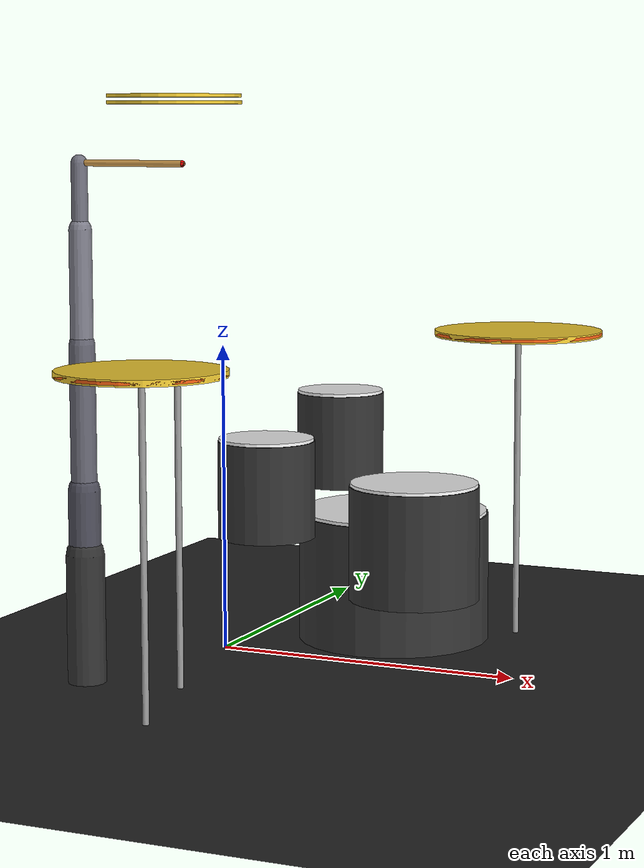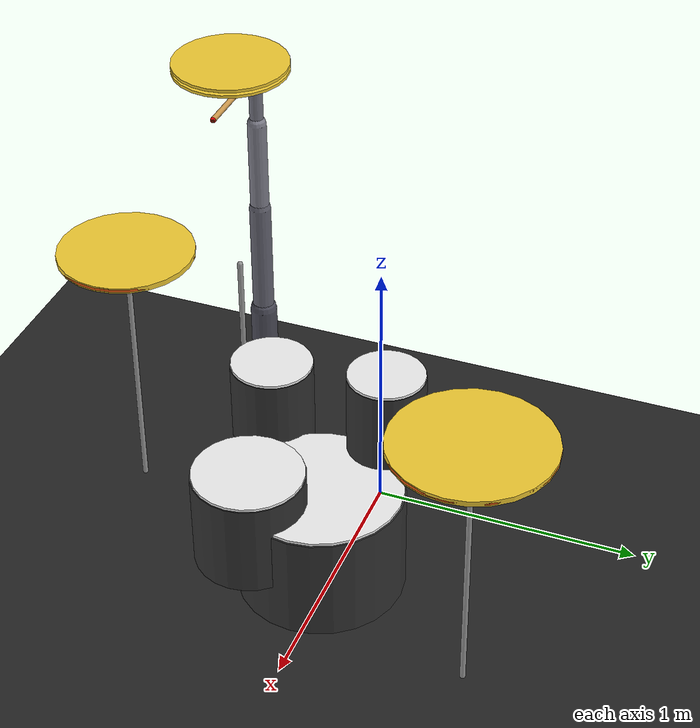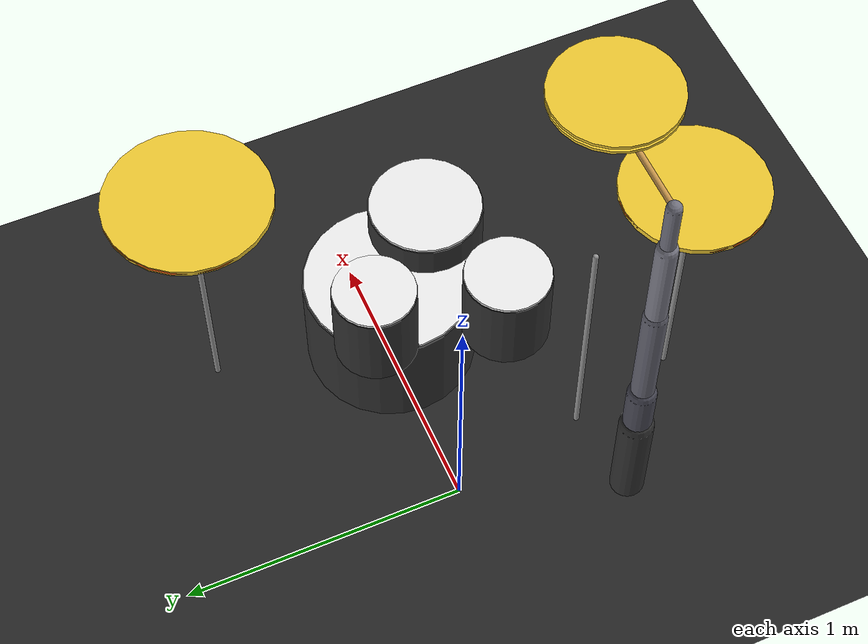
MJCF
<mujoco model="drum_kit">
  <compiler autolimits="true" angle="radian"/>
  <option timestep="0.002"/>
  <default>
    <default class="/">
      <geom friction="1 0.10000000000000001 0.10000000000000001" density="200"/>
    </default>
  </default>
  <worldbody>
    <body name="stage" pos="0 0 0">
      <geom name="stage_floor" class="/" type="plane" size="2 2 0.10000000000000001" rgba="0.14999999999999999 0.14999999999999999 0.14999999999999999 1"/>
    </body>
    <body name="drum_kit" pos="0 0 0">
      <light name="key_light" class="/" pos="1.5 -1 2" dir="-1.5 1 -2" diffuse="1 1 1" specular="0.29999999999999999 0.29999999999999999 0.29999999999999999"/>
      <camera name="front" class="/" fovy="45" pos="1.6000000000000001 -1.1000000000000001 1.1000000000000001" xyaxes="0.6163082616581107 0.7875050010075858 -0 -0.27756616637232134 0.21722569542181672 0.9358258494687357"/>
      <body name="kick_body" pos="0.59999999999999998 0 0.29999999999999999">
        <geom name="kick_shell" class="/" type="cylinder" size="0.29999999999999999 0.20000000000000001" rgba="0.20000000000000001 0.20000000000000001 0.20000000000000001 1" mass="8"/>
        <geom name="kick_head" class="/" type="cylinder" size="0.29399999999999998 0.01" rgba="0.94999999999999996 0.94999999999999996 0.94999999999999996 1" pos="0 0 0.20000000000000001"/>
        <site name="kick_strike_site" class="/" type="cylinder" rgba="1 0 0 0.5" size="0.28499999999999998 0.0050000000000000001" pos="0 0 0.20000000000000001"/>
      </body>
      <body name="snare_body" pos="0.29999999999999999 -0.29999999999999999 0.59999999999999998">
        <geom name="snare_shell" class="/" type="cylinder" size="0.14999999999999999 0.14999999999999999" rgba="0.20000000000000001 0.20000000000000001 0.20000000000000001 1" mass="3"/>
        <geom name="snare_head" class="/" type="cylinder" size="0.14699999999999999 0.01" rgba="0.94999999999999996 0.94999999999999996 0.94999999999999996 1" pos="0 0 0.14999999999999999"/>
        <site name="snare_strike_site" class="/" type="cylinder" rgba="1 0 0 0.5" size="0.14249999999999999 0.0050000000000000001" pos="0 0 0.14999999999999999"/>
      </body>
      <body name="rack_tom_body" pos="0.34999999999999998 0.14999999999999999 0.69999999999999996">
        <geom name="rack_tom_shell" class="/" type="cylinder" size="0.14000000000000001 0.14999999999999999" rgba="0.20000000000000001 0.20000000000000001 0.20000000000000001 1" mass="2.5"/>
        <geom name="rack_tom_head" class="/" type="cylinder" size="0.13720000000000002 0.01" rgba="0.94999999999999996 0.94999999999999996 0.94999999999999996 1" pos="0 0 0.14999999999999999"/>
        <site name="rack_tom_strike_site" class="/" type="cylinder" rgba="1 0 0 0.5" size="0.13300000000000001 0.0050000000000000001" pos="0 0 0.14999999999999999"/>
      </body>
      <body name="floor_tom_body" pos="0.75 -0.20000000000000001 0.45000000000000001">
        <geom name="floor_tom_shell" class="/" type="cylinder" size="0.20000000000000001 0.17499999999999999" rgba="0.20000000000000001 0.20000000000000001 0.20000000000000001 1" mass="3.5"/>
        <geom name="floor_tom_head" class="/" type="cylinder" size="0.19600000000000001 0.01" rgba="0.94999999999999996 0.94999999999999996 0.94999999999999996 1" pos="0 0 0.17499999999999999"/>
        <site name="floor_tom_strike_site" class="/" type="cylinder" rgba="1 0 0 0.5" size="0.19 0.0050000000000000001" pos="0 0 0.17499999999999999"/>
      </body>
      <body name="crash_body" pos="0.20000000000000001 -0.90000000000000002 1">
        <geom name="crash_stand" class="/" type="capsule" size="0.01 1" rgba="0.59999999999999998 0.59999999999999998 0.59999999999999998 1" friction="1 0.5 0.001" fromto="0 0 -1 0 0 0"/>
        <geom name="crash_cymbal" class="/" type="cylinder" size="0.25 0.01" rgba="0.94999999999999996 0.80000000000000004 0.20000000000000001 1" pos="0 0 0.02"/>
        <site name="crash_strike_site" class="/" type="cylinder" rgba="1 0 0 0.5" size="0.25 0.0050000000000000001" pos="0 0 0.02"/>
      </body>
      <body name="ride_body" pos="0.80000000000000004 0.59999999999999998 1">
        <geom name="ride_stand" class="/" type="capsule" size="0.01 1" rgba="0.59999999999999998 0.59999999999999998 0.59999999999999998 1" friction="1 0.5 0.001" fromto="0 0 -1 0 0 0"/>
        <geom name="ride_cymbal" class="/" type="cylinder" size="0.28000000000000003 0.01" rgba="0.94999999999999996 0.80000000000000004 0.20000000000000001 1" pos="0 0 0.02"/>
        <site name="ride_strike_site" class="/" type="cylinder" rgba="1 0 0 0.5" size="0.28000000000000003 0.0050000000000000001" pos="0 0 0.02"/>
      </body>
      <body name="hi_hat_body" pos="0.10000000000000001 -0.5 1">
        <geom name="hi_hat_stand" class="/" type="capsule" size="0.01 1" rgba="0.59999999999999998 0.59999999999999998 0.59999999999999998 1" fromto="0 0 -1 0 0 0"/>
        <body name="hi_hat_upper" pos="0 0 0.80000000000000004">
          <joint name="hi_hat_joint" class="/" type="slide" axis="0 0 1" limited="true" range="-0.050000000000000003 0.050000000000000003"/>
          <geom name="hi_hat_top" class="/" type="cylinder" size="0.20000000000000001 0.0050000000000000001" rgba="0.94999999999999996 0.80000000000000004 0.20000000000000001 1"/>
          <site name="hi_hat_strike_site" class="/" type="cylinder" rgba="1 0 0 0.5" size="0.20000000000000001 0.0050000000000000001"/>
        </body>
        <geom name="hi_hat_bottom" class="/" type="cylinder" size="0.20000000000000001 0.0050000000000000001" rgba="0.94999999999999996 0.80000000000000004 0.20000000000000001 1" pos="0 0 0.78000000000000003"/>
      </body>
    </body>
    <body name="arm_mount" pos="-0.20000000000000001 -0.55000000000000004 0.34999999999999998">
      <geom name="arm_post" class="/" type="capsule" size="0.059999999999999998" rgba="0.20000000000000001 0.20000000000000001 0.20000000000000001 1" fromto="0 0 -0.34999999999999998 0 0 0.050000000000000003"/>
      <body name="shoulder_body" pos="0 0 0.050000000000000003">
        <joint name="shoulder_yaw" class="/" type="hinge" axis="0 0 1" limited="true" range="-1.2 1.2" damping="3"/>
        <geom name="shoulder_base" class="/" type="capsule" size="0.050000000000000003" rgba="0.29999999999999999 0.29999999999999999 0.34999999999999998 1" fromto="0 0 0 0 0 0.20000000000000001"/>
        <body name="upper_arm" pos="0 0 0.20000000000000001">
          <joint name="shoulder_pitch" class="/" type="hinge" axis="0 1 0" limited="true" range="-1.3999999999999999 1.2" damping="2"/>
          <geom name="upper_arm_geom" class="/" type="capsule" size="0.040000000000000001" rgba="0.40000000000000002 0.40000000000000002 0.45000000000000001 1" fromto="0 0 0 0 0 0.45000000000000001"/>
          <body name="forearm" pos="0 0 0.45000000000000001">
            <joint name="elbow_pitch" class="/" type="hinge" axis="0 1 0" limited="true" range="-2 0.5" damping="1.5"/>
            <geom name="forearm_geom" class="/" type="capsule" size="0.035000000000000003" rgba="0.5 0.5 0.55000000000000004 1" fromto="0 0 0 0 0 0.34999999999999998"/>
            <body name="wrist" pos="0 0 0.34999999999999998">
              <joint name="wrist_yaw" class="/" type="hinge" axis="0 0 1" limited="true" range="-1 1" damping="0.5"/>
              <geom name="wrist_geom" class="/" type="capsule" size="0.025000000000000001" rgba="0.45000000000000001 0.45000000000000001 0.5 1" fromto="0 0 0 0 0 0.20000000000000001"/>
              <body name="drum_stick" pos="0 0 0.20000000000000001">
                <geom name="drum_stick_geom" class="/" type="capsule" size="0.01" rgba="0.80000000000000004 0.59999999999999998 0.29999999999999999 1" fromto="0 0 0 0.34999999999999998 0 0"/>
                <site name="stick_tip" class="/" rgba="1 0 0 1" size="0.01" pos="0.34999999999999998 0 0"/>
              </body>
            </body>
          </body>
        </body>
      </body>
    </body>
  </worldbody>
  <actuator>
    <position name="shoulder_yaw_actuator" class="/" ctrlrange="-1.2 1.2" joint="shoulder_yaw" kp="200"/>
    <position name="shoulder_pitch_actuator" class="/" ctrlrange="-1.3999999999999999 1.2" joint="shoulder_pitch" kp="200"/>
    <position name="elbow_pitch_actuator" class="/" ctrlrange="-2 0.5" joint="elbow_pitch" kp="200"/>
    <position name="wrist_yaw_actuator" class="/" ctrlrange="-1 1" joint="wrist_yaw" kp="200"/>
  </actuator>
</mujoco>
